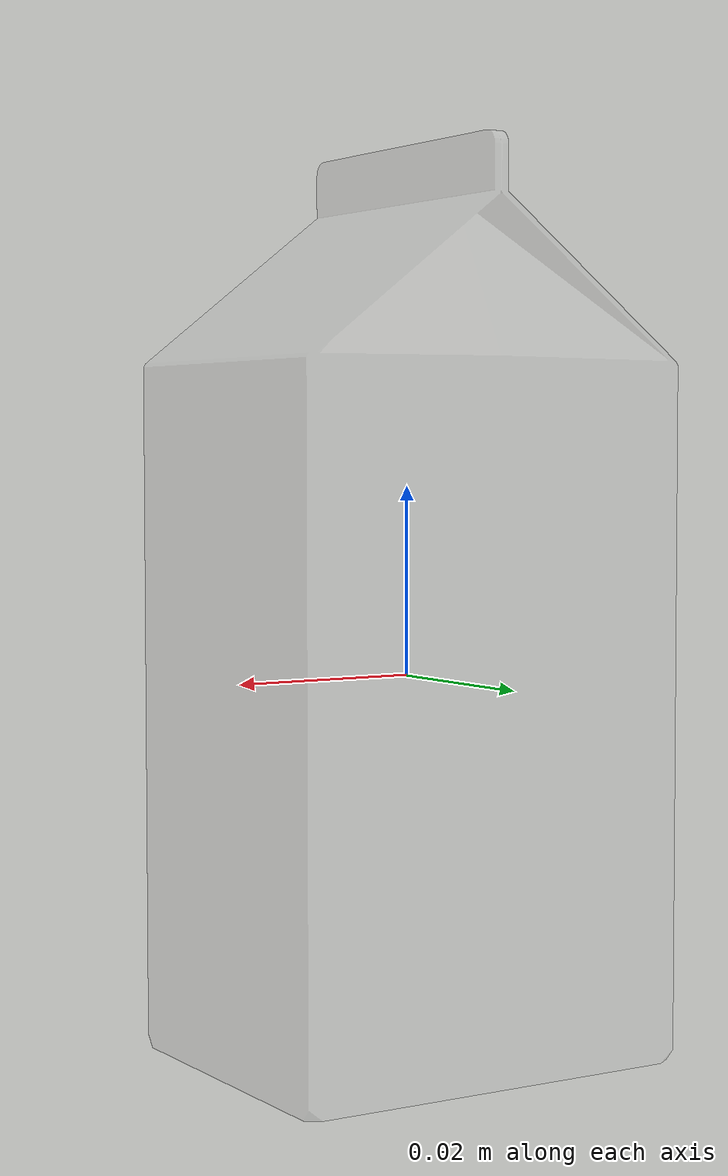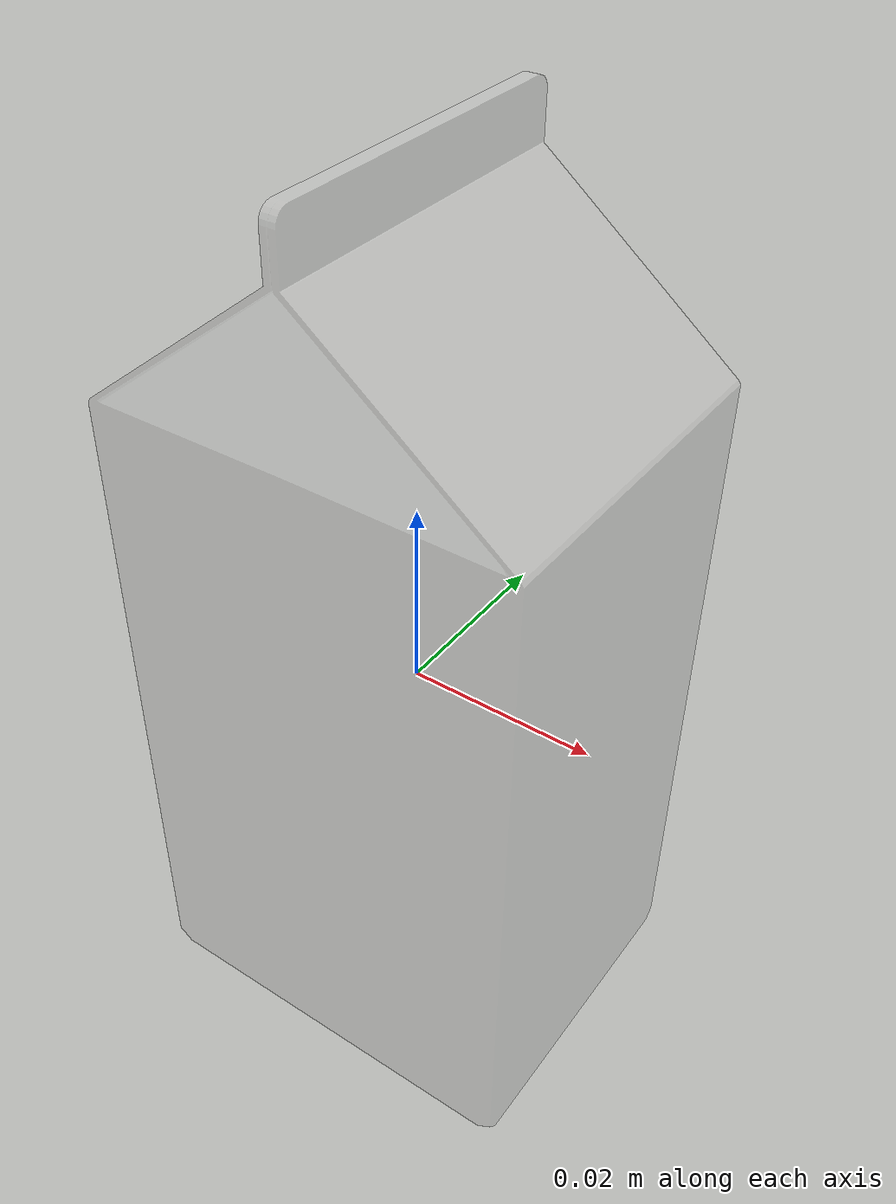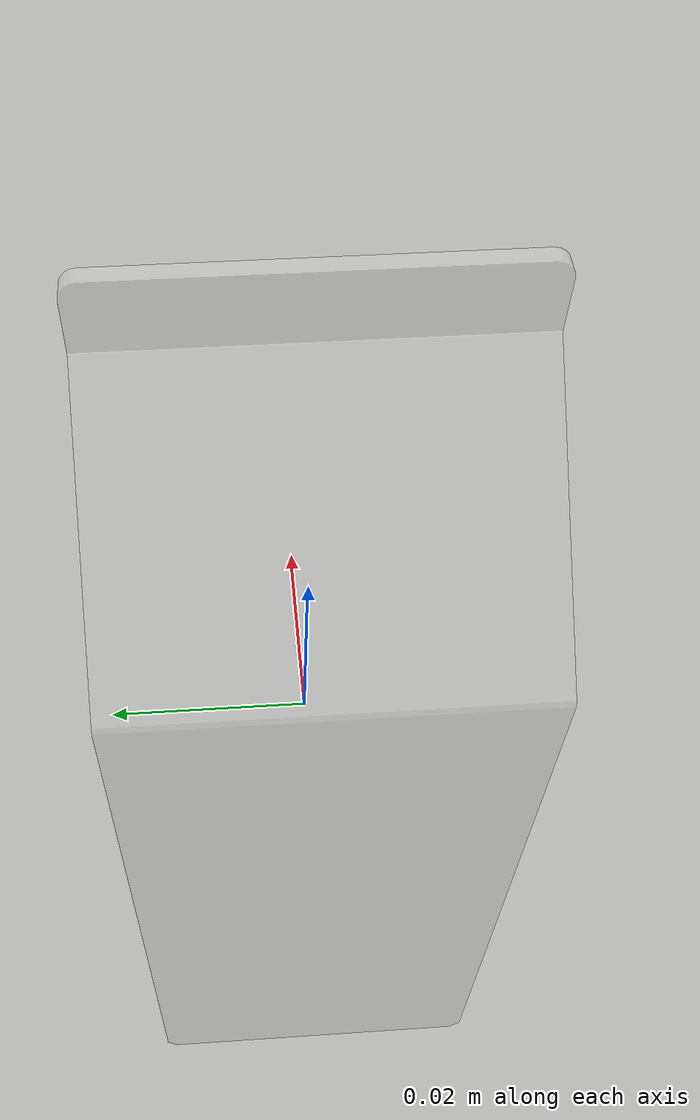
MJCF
<mujoco model="milk-visual">
  <asset>
    <mesh file="meshes/milk.stl" name="milk_mesh" scale="1.0 0.8 0.6"/>
  </asset>
  <worldbody>
    <body>
      <body name="object">
        <geom pos="0 0 0" mesh="milk_mesh" type="mesh" rgba="0.8 0.8 0.8 0.3" conaffinity="0" contype="0" group="1" mass="0.0001"/>
      </body>
      <site rgba="0 0 0 0" size="0.005" pos="0 0 -0.085" name="bottom_site"/>
      <site rgba="0 0 0 0" size="0.005" pos="0 0 0.075" name="top_site"/>
      <site rgba="0 0 0 0" size="0.005" pos="0.025 0.025 0" name="horizontal_radius_site"/>
    </body>
  </worldbody>
</mujoco>
